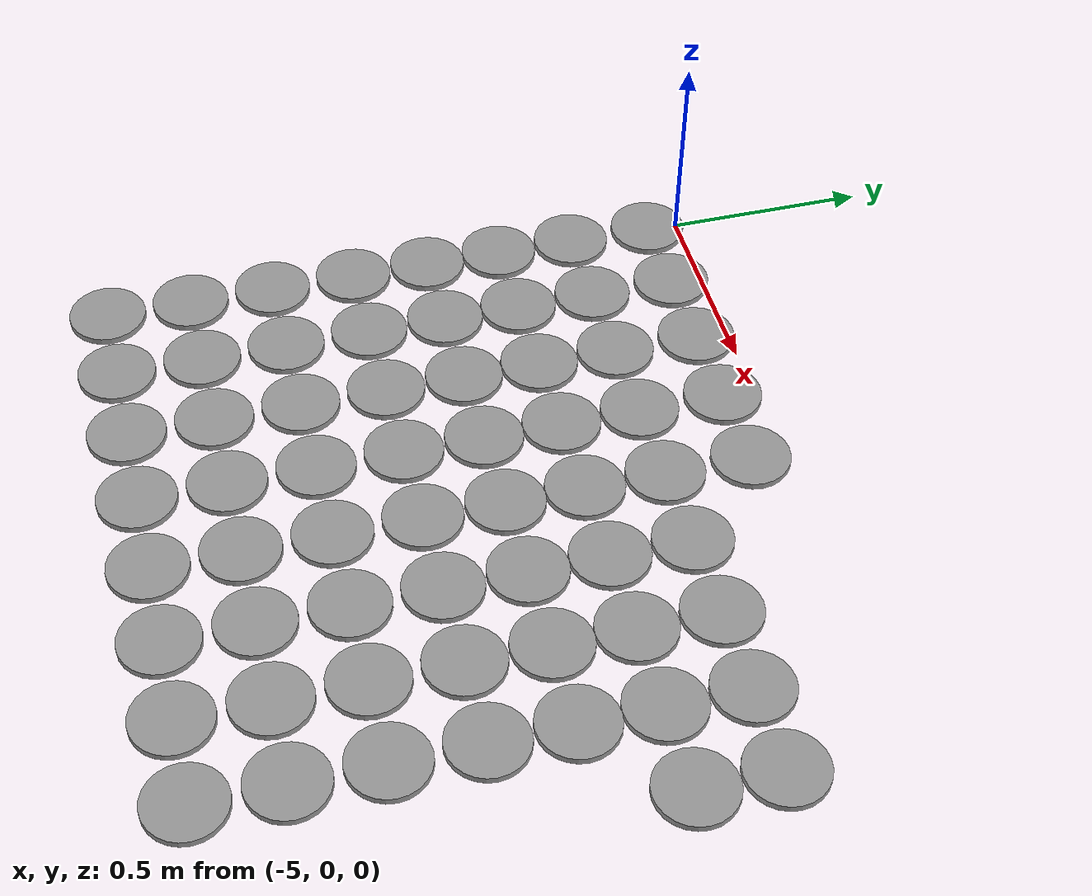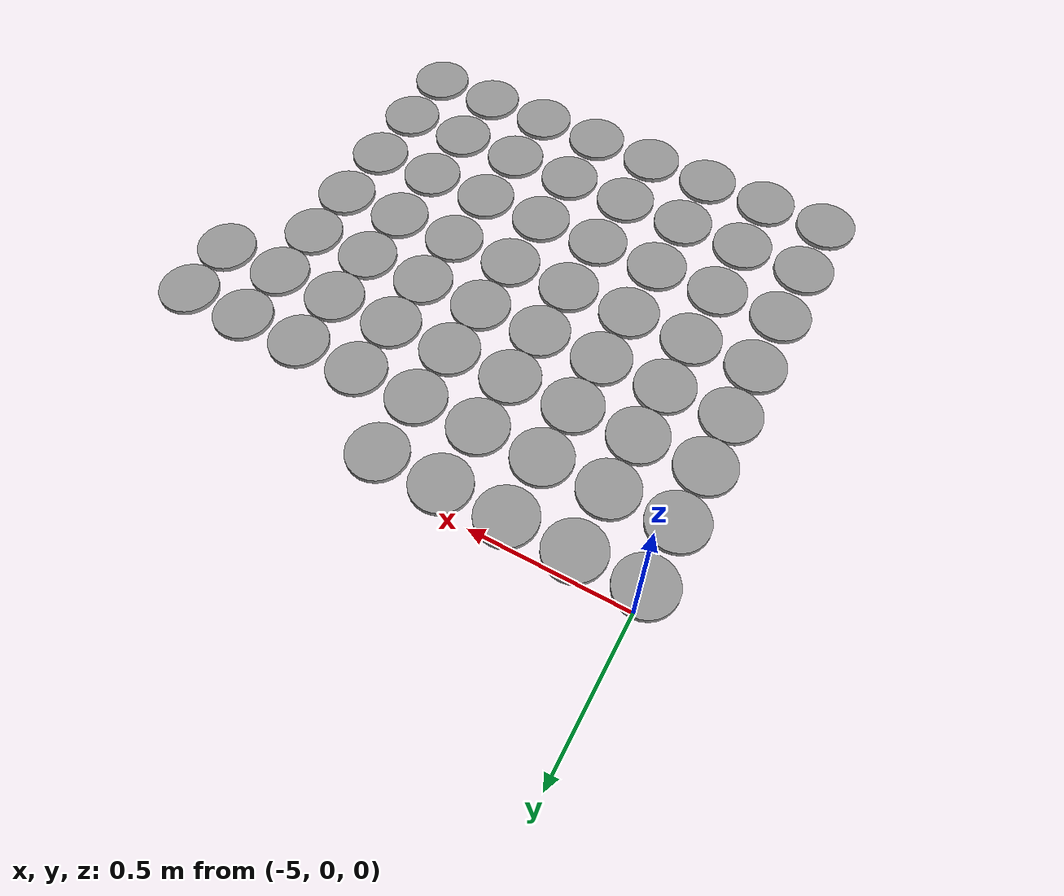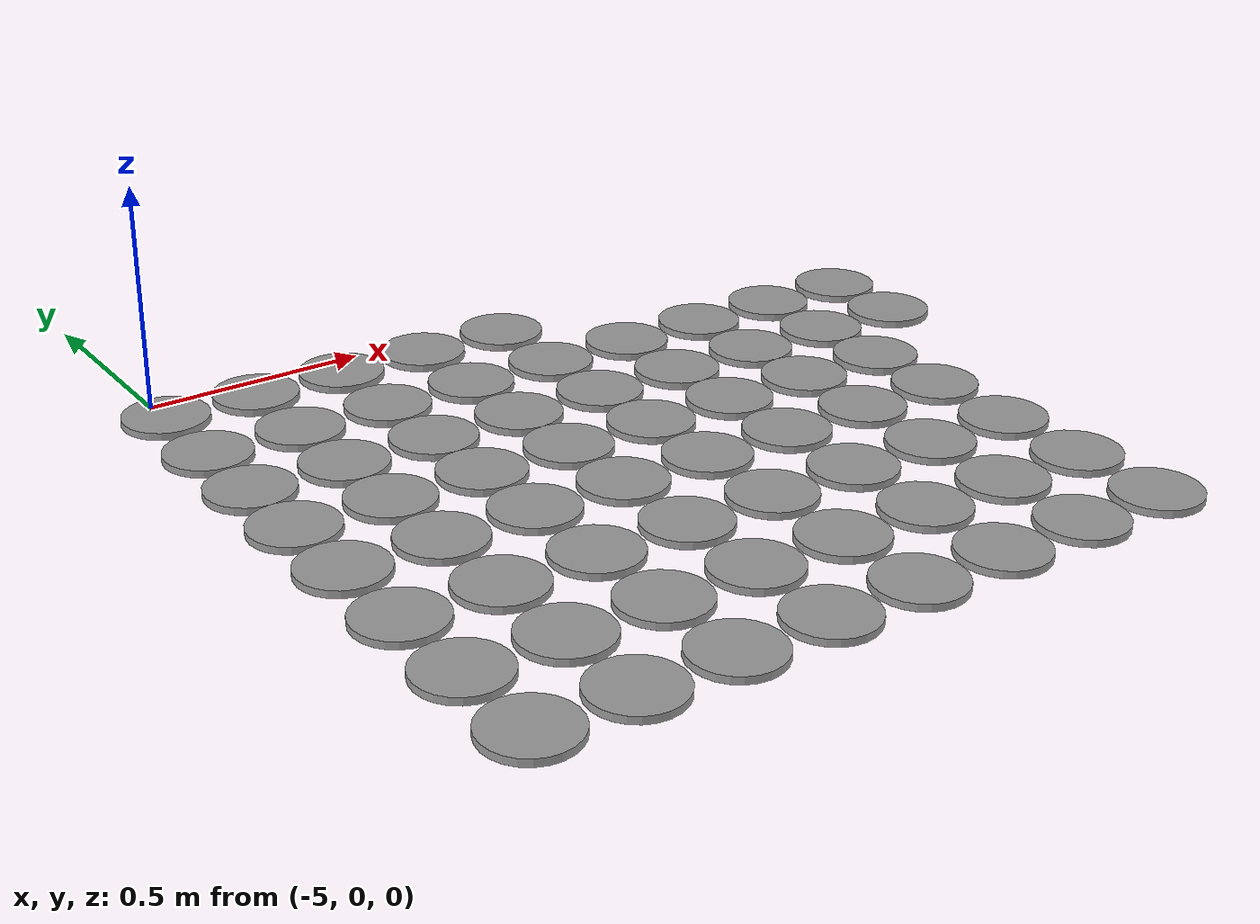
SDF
<sdf version="1.6">
 <world name="default">
  <model name="unit_cylinder_clone_250">
   <pose>-5 -0.484923 0.008111 0 -0 0</pose>
   <link name="link">
    <inertial>
     <mass>1</mass>
     <inertia><ixx>0.145833</ixx><ixy>0</ixy><ixz>0</ixz><iyy>0.145833</iyy><iyz>0</iyz><izz>0.125</izz></inertia>
    </inertial>
    <collision name="collision">
     <geometry><cylinder><radius>0.0950718</radius><length>0.0162339</length></cylinder></geometry>
     <max_contacts>5</max_contacts>
    </collision>
    <visual name="visual">
     <geometry><cylinder><radius>0.0950718</radius><length>0.0162339</length></cylinder></geometry>
     <material>
      <script><name>Gazebo/Grey</name><uri>file://media/materials/scripts/gazebo.material</uri></script>
     </material>
    </visual>
   </link>
  </model>
  <model name="unit_cylinder_clone_251">
   <pose>-5 -0.29 0.008111 0 -0 0</pose>
   <link name="link">
    <inertial>
     <mass>1</mass>
     <inertia><ixx>0.145833</ixx><ixy>0</ixy><ixz>0</ixz><iyy>0.145833</iyy><iyz>0</iyz><izz>0.125</izz></inertia>
    </inertial>
    <collision name="collision">
     <geometry><cylinder><radius>0.0950718</radius><length>0.0162339</length></cylinder></geometry>
     <max_contacts>5</max_contacts>
    </collision>
    <visual name="visual">
     <geometry><cylinder><radius>0.0950718</radius><length>0.0162339</length></cylinder></geometry>
     <material>
      <script><name>Gazebo/Grey</name><uri>file://media/materials/scripts/gazebo.material</uri></script>
     </material>
    </visual>
   </link>
  </model>
  <model name="unit_cylinder_clone_252">
   <pose>-5 -0.08 0.008111 0 -0 0</pose>
   <link name="link">
    <inertial>
     <mass>1</mass>
     <inertia><ixx>0.145833</ixx><ixy>0</ixy><ixz>0</ixz><iyy>0.145833</iyy><iyz>0</iyz><izz>0.125</izz></inertia>
    </inertial>
    <collision name="collision">
     <geometry><cylinder><radius>0.0950718</radius><length>0.0162339</length></cylinder></geometry>
     <max_contacts>5</max_contacts>
    </collision>
    <visual name="visual">
     <geometry><cylinder><radius>0.0950718</radius><length>0.0162339</length></cylinder></geometry>
     <material>
      <script><name>Gazebo/Grey</name><uri>file://media/materials/scripts/gazebo.material</uri></script>
     </material>
    </visual>
   </link>
  </model>
  <model name="unit_cylinder_clone_255">
   <pose>-4.79 -0.484923 0.008111 0 -0 0</pose>
   <link name="link">
    <inertial>
     <mass>1</mass>
     <inertia><ixx>0.145833</ixx><ixy>0</ixy><ixz>0</ixz><iyy>0.145833</iyy><iyz>0</iyz><izz>0.125</izz></inertia>
    </inertial>
    <collision name="collision">
     <geometry><cylinder><radius>0.0950718</radius><length>0.0162339</length></cylinder></geometry>
     <max_contacts>5</max_contacts>
    </collision>
    <visual name="visual">
     <geometry><cylinder><radius>0.0950718</radius><length>0.0162339</length></cylinder></geometry>
     <material>
      <script><name>Gazebo/Grey</name><uri>file://media/materials/scripts/gazebo.material</uri></script>
     </material>
    </visual>
   </link>
  </model>
  <model name="unit_cylinder_clone_256">
   <pose>-4.79 -0.29 0.008111 0 -0 0</pose>
   <link name="link">
    <inertial>
     <mass>1</mass>
     <inertia><ixx>0.145833</ixx><ixy>0</ixy><ixz>0</ixz><iyy>0.145833</iyy><iyz>0</iyz><izz>0.125</izz></inertia>
    </inertial>
    <collision name="collision">
     <geometry><cylinder><radius>0.0950718</radius><length>0.0162339</length></cylinder></geometry>
     <max_contacts>5</max_contacts>
    </collision>
    <visual name="visual">
     <geometry><cylinder><radius>0.0950718</radius><length>0.0162339</length></cylinder></geometry>
     <material>
      <script><name>Gazebo/Grey</name><uri>file://media/materials/scripts/gazebo.material</uri></script>
     </material>
    </visual>
   </link>
  </model>
  <model name="unit_cylinder_clone_257">
   <pose>-4.79 -0.08 0.008111 0 -0 0</pose>
   <link name="link">
    <inertial>
     <mass>1</mass>
     <inertia><ixx>0.145833</ixx><ixy>0</ixy><ixz>0</ixz><iyy>0.145833</iyy><iyz>0</iyz><izz>0.125</izz></inertia>
    </inertial>
    <collision name="collision">
     <geometry><cylinder><radius>0.0950718</radius><length>0.0162339</length></cylinder></geometry>
     <max_contacts>5</max_contacts>
    </collision>
    <visual name="visual">
     <geometry><cylinder><radius>0.0950718</radius><length>0.0162339</length></cylinder></geometry>
     <material>
      <script><name>Gazebo/Grey</name><uri>file://media/materials/scripts/gazebo.material</uri></script>
     </material>
    </visual>
   </link>
  </model>
  <model name="unit_cylinder_clone_260">
   <pose>-4.58 -0.484923 0.008111 0 -0 0</pose>
   <link name="link">
    <inertial>
     <mass>1</mass>
     <inertia><ixx>0.145833</ixx><ixy>0</ixy><ixz>0</ixz><iyy>0.145833</iyy><iyz>0</iyz><izz>0.125</izz></inertia>
    </inertial>
    <collision name="collision">
     <geometry><cylinder><radius>0.0950718</radius><length>0.0162339</length></cylinder></geometry>
     <max_contacts>5</max_contacts>
    </collision>
    <visual name="visual">
     <geometry><cylinder><radius>0.0950718</radius><length>0.0162339</length></cylinder></geometry>
     <material>
      <script><name>Gazebo/Grey</name><uri>file://media/materials/scripts/gazebo.material</uri></script>
     </material>
    </visual>
   </link>
  </model>
  <model name="unit_cylinder_clone_261">
   <pose>-4.58 -0.29 0.008111 0 -0 0</pose>
   <link name="link">
    <inertial>
     <mass>1</mass>
     <inertia><ixx>0.145833</ixx><ixy>0</ixy><ixz>0</ixz><iyy>0.145833</iyy><iyz>0</iyz><izz>0.125</izz></inertia>
    </inertial>
    <collision name="collision">
     <geometry><cylinder><radius>0.0950718</radius><length>0.0162339</length></cylinder></geometry>
     <max_contacts>5</max_contacts>
    </collision>
    <visual name="visual">
     <geometry><cylinder><radius>0.0950718</radius><length>0.0162339</length></cylinder></geometry>
     <material>
      <script><name>Gazebo/Grey</name><uri>file://media/materials/scripts/gazebo.material</uri></script>
     </material>
    </visual>
   </link>
  </model>
  <model name="unit_cylinder_clone_262">
   <pose>-4.58 -0.08 0.008111 0 -0 0</pose>
   <link name="link">
    <inertial>
     <mass>1</mass>
     <inertia><ixx>0.145833</ixx><ixy>0</ixy><ixz>0</ixz><iyy>0.145833</iyy><iyz>0</iyz><izz>0.125</izz></inertia>
    </inertial>
    <collision name="collision">
     <geometry><cylinder><radius>0.0950718</radius><length>0.0162339</length></cylinder></geometry>
     <max_contacts>5</max_contacts>
    </collision>
    <visual name="visual">
     <geometry><cylinder><radius>0.0950718</radius><length>0.0162339</length></cylinder></geometry>
     <material>
      <script><name>Gazebo/Grey</name><uri>file://media/materials/scripts/gazebo.material</uri></script>
     </material>
    </visual>
   </link>
  </model>
  <model name="unit_cylinder_clone_265">
   <pose>-4.37 -0.484923 0.008111 0 -0 0</pose>
   <link name="link">
    <inertial>
     <mass>1</mass>
     <inertia><ixx>0.145833</ixx><ixy>0</ixy><ixz>0</ixz><iyy>0.145833</iyy><iyz>0</iyz><izz>0.125</izz></inertia>
    </inertial>
    <collision name="collision">
     <geometry><cylinder><radius>0.0950718</radius><length>0.0162339</length></cylinder></geometry>
     <max_contacts>5</max_contacts>
    </collision>
    <visual name="visual">
     <geometry><cylinder><radius>0.0950718</radius><length>0.0162339</length></cylinder></geometry>
     <material>
      <script><name>Gazebo/Grey</name><uri>file://media/materials/scripts/gazebo.material</uri></script>
     </material>
    </visual>
   </link>
  </model>
  <model name="unit_cylinder_clone_266">
   <pose>-4.37 -0.29 0.008111 0 -0 0</pose>
   <link name="link">
    <inertial>
     <mass>1</mass>
     <inertia><ixx>0.145833</ixx><ixy>0</ixy><ixz>0</ixz><iyy>0.145833</iyy><iyz>0</iyz><izz>0.125</izz></inertia>
    </inertial>
    <collision name="collision">
     <geometry><cylinder><radius>0.0950718</radius><length>0.0162339</length></cylinder></geometry>
     <max_contacts>5</max_contacts>
    </collision>
    <visual name="visual">
     <geometry><cylinder><radius>0.0950718</radius><length>0.0162339</length></cylinder></geometry>
     <material>
      <script><name>Gazebo/Grey</name><uri>file://media/materials/scripts/gazebo.material</uri></script>
     </material>
    </visual>
   </link>
  </model>
  <model name="unit_cylinder_clone_267">
   <pose>-4.37 -0.08 0.008111 0 -0 0</pose>
   <link name="link">
    <inertial>
     <mass>1</mass>
     <inertia><ixx>0.145833</ixx><ixy>0</ixy><ixz>0</ixz><iyy>0.145833</iyy><iyz>0</iyz><izz>0.125</izz></inertia>
    </inertial>
    <collision name="collision">
     <geometry><cylinder><radius>0.0950718</radius><length>0.0162339</length></cylinder></geometry>
     <max_contacts>5</max_contacts>
    </collision>
    <visual name="visual">
     <geometry><cylinder><radius>0.0950718</radius><length>0.0162339</length></cylinder></geometry>
     <material>
      <script><name>Gazebo/Grey</name><uri>file://media/materials/scripts/gazebo.material</uri></script>
     </material>
    </visual>
   </link>
  </model>
  <model name="unit_cylinder_clone_270">
   <pose>-4.16 -0.484923 0.008111 0 -0 0</pose>
   <link name="link">
    <inertial>
     <mass>1</mass>
     <inertia><ixx>0.145833</ixx><ixy>0</ixy><ixz>0</ixz><iyy>0.145833</iyy><iyz>0</iyz><izz>0.125</izz></inertia>
    </inertial>
    <collision name="collision">
     <geometry><cylinder><radius>0.0950718</radius><length>0.0162339</length></cylinder></geometry>
     <max_contacts>5</max_contacts>
    </collision>
    <visual name="visual">
     <geometry><cylinder><radius>0.0950718</radius><length>0.0162339</length></cylinder></geometry>
     <material>
      <script><name>Gazebo/Grey</name><uri>file://media/materials/scripts/gazebo.material</uri></script>
     </material>
    </visual>
   </link>
  </model>
  <model name="unit_cylinder_clone_271">
   <pose>-4.16 -0.29 0.008111 0 -0 0</pose>
   <link name="link">
    <inertial>
     <mass>1</mass>
     <inertia><ixx>0.145833</ixx><ixy>0</ixy><ixz>0</ixz><iyy>0.145833</iyy><iyz>0</iyz><izz>0.125</izz></inertia>
    </inertial>
    <collision name="collision">
     <geometry><cylinder><radius>0.0950718</radius><length>0.0162339</length></cylinder></geometry>
     <max_contacts>5</max_contacts>
    </collision>
    <visual name="visual">
     <geometry><cylinder><radius>0.0950718</radius><length>0.0162339</length></cylinder></geometry>
     <material>
      <script><name>Gazebo/Grey</name><uri>file://media/materials/scripts/gazebo.material</uri></script>
     </material>
    </visual>
   </link>
  </model>
  <model name="unit_cylinder_clone_272">
   <pose>-4.16 -0.08 0.008111 0 -0 0</pose>
   <link name="link">
    <inertial>
     <mass>1</mass>
     <inertia><ixx>0.145833</ixx><ixy>0</ixy><ixz>0</ixz><iyy>0.145833</iyy><iyz>0</iyz><izz>0.125</izz></inertia>
    </inertial>
    <collision name="collision">
     <geometry><cylinder><radius>0.0950718</radius><length>0.0162339</length></cylinder></geometry>
     <max_contacts>5</max_contacts>
    </collision>
    <visual name="visual">
     <geometry><cylinder><radius>0.0950718</radius><length>0.0162339</length></cylinder></geometry>
     <material>
      <script><name>Gazebo/Grey</name><uri>file://media/materials/scripts/gazebo.material</uri></script>
     </material>
    </visual>
   </link>
  </model>
  <model name="unit_cylinder_clone_275">
   <pose>-3.95 -0.484923 0.008111 0 -0 0</pose>
   <link name="link">
    <inertial>
     <mass>1</mass>
     <inertia><ixx>0.145833</ixx><ixy>0</ixy><ixz>0</ixz><iyy>0.145833</iyy><iyz>0</iyz><izz>0.125</izz></inertia>
    </inertial>
    <collision name="collision">
     <geometry><cylinder><radius>0.0950718</radius><length>0.0162339</length></cylinder></geometry>
     <max_contacts>5</max_contacts>
    </collision>
    <visual name="visual">
     <geometry><cylinder><radius>0.0950718</radius><length>0.0162339</length></cylinder></geometry>
     <material>
      <script><name>Gazebo/Grey</name><uri>file://media/materials/scripts/gazebo.material</uri></script>
     </material>
    </visual>
   </link>
  </model>
  <model name="unit_cylinder_clone_276">
   <pose>-3.95 -0.29 0.008111 0 -0 0</pose>
   <link name="link">
    <inertial>
     <mass>1</mass>
     <inertia><ixx>0.145833</ixx><ixy>0</ixy><ixz>0</ixz><iyy>0.145833</iyy><iyz>0</iyz><izz>0.125</izz></inertia>
    </inertial>
    <collision name="collision">
     <geometry><cylinder><radius>0.0950718</radius><length>0.0162339</length></cylinder></geometry>
     <max_contacts>5</max_contacts>
    </collision>
    <visual name="visual">
     <geometry><cylinder><radius>0.0950718</radius><length>0.0162339</length></cylinder></geometry>
     <material>
      <script><name>Gazebo/Grey</name><uri>file://media/materials/scripts/gazebo.material</uri></script>
     </material>
    </visual>
   </link>
  </model>
  <model name="unit_cylinder_clone_280">
   <pose>-3.74 -0.484923 0.008111 0 -0 0</pose>
   <link name="link">
    <inertial>
     <mass>1</mass>
     <inertia><ixx>0.145833</ixx><ixy>0</ixy><ixz>0</ixz><iyy>0.145833</iyy><iyz>0</iyz><izz>0.125</izz></inertia>
    </inertial>
    <collision name="collision">
     <geometry><cylinder><radius>0.0950718</radius><length>0.0162339</length></cylinder></geometry>
     <max_contacts>5</max_contacts>
    </collision>
    <visual name="visual">
     <geometry><cylinder><radius>0.0950718</radius><length>0.0162339</length></cylinder></geometry>
     <material>
      <script><name>Gazebo/Grey</name><uri>file://media/materials/scripts/gazebo.material</uri></script>
     </material>
    </visual>
   </link>
  </model>
  <model name="unit_cylinder_clone_281">
   <pose>-3.74 -0.29 0.008111 0 -0 0</pose>
   <link name="link">
    <inertial>
     <mass>1</mass>
     <inertia><ixx>0.145833</ixx><ixy>0</ixy><ixz>0</ixz><iyy>0.145833</iyy><iyz>0</iyz><izz>0.125</izz></inertia>
    </inertial>
    <collision name="collision">
     <geometry><cylinder><radius>0.0950718</radius><length>0.0162339</length></cylinder></geometry>
     <max_contacts>5</max_contacts>
    </collision>
    <visual name="visual">
     <geometry><cylinder><radius>0.0950718</radius><length>0.0162339</length></cylinder></geometry>
     <material>
      <script><name>Gazebo/Grey</name><uri>file://media/materials/scripts/gazebo.material</uri></script>
     </material>
    </visual>
   </link>
  </model>
  <model name="unit_cylinder_clone_285">
   <pose>-3.53 -0.484923 0.008111 0 -0 0</pose>
   <link name="link">
    <inertial>
     <mass>1</mass>
     <inertia><ixx>0.145833</ixx><ixy>0</ixy><ixz>0</ixz><iyy>0.145833</iyy><iyz>0</iyz><izz>0.125</izz></inertia>
    </inertial>
    <collision name="collision">
     <geometry><cylinder><radius>0.0950718</radius><length>0.0162339</length></cylinder></geometry>
     <max_contacts>5</max_contacts>
    </collision>
    <visual name="visual">
     <geometry><cylinder><radius>0.0950718</radius><length>0.0162339</length></cylinder></geometry>
     <material>
      <script><name>Gazebo/Grey</name><uri>file://media/materials/scripts/gazebo.material</uri></script>
     </material>
    </visual>
   </link>
  </model>
  <model name="unit_cylinder_clone_286">
   <pose>-3.53 -0.29 0.008111 0 -0 0</pose>
   <link name="link">
    <inertial>
     <mass>1</mass>
     <inertia><ixx>0.145833</ixx><ixy>0</ixy><ixz>0</ixz><iyy>0.145833</iyy><iyz>0</iyz><izz>0.125</izz></inertia>
    </inertial>
    <collision name="collision">
     <geometry><cylinder><radius>0.0950718</radius><length>0.0162339</length></cylinder></geometry>
     <max_contacts>5</max_contacts>
    </collision>
    <visual name="visual">
     <geometry><cylinder><radius>0.0950718</radius><length>0.0162339</length></cylinder></geometry>
     <material>
      <script><name>Gazebo/Grey</name><uri>file://media/materials/scripts/gazebo.material</uri></script>
     </material>
    </visual>
   </link>
  </model>
  <model name="unit_cylinder_clone_290">
   <pose>-3.32 -0.484923 0.008111 0 -0 0</pose>
   <link name="link">
    <inertial>
     <mass>1</mass>
     <inertia><ixx>0.145833</ixx><ixy>0</ixy><ixz>0</ixz><iyy>0.145833</iyy><iyz>0</iyz><izz>0.125</izz></inertia>
    </inertial>
    <collision name="collision">
     <geometry><cylinder><radius>0.0950718</radius><length>0.0162339</length></cylinder></geometry>
     <max_contacts>5</max_contacts>
    </collision>
    <visual name="visual">
     <geometry><cylinder><radius>0.0950718</radius><length>0.0162339</length></cylinder></geometry>
     <material>
      <script><name>Gazebo/Grey</name><uri>file://media/materials/scripts/gazebo.material</uri></script>
     </material>
    </visual>
   </link>
  </model>
  <model name="unit_cylinder_clone_291">
   <pose>-3.32 -0.29 0.008111 0 -0 0</pose>
   <link name="link">
    <inertial>
     <mass>1</mass>
     <inertia><ixx>0.145833</ixx><ixy>0</ixy><ixz>0</ixz><iyy>0.145833</iyy><iyz>0</iyz><izz>0.125</izz></inertia>
    </inertial>
    <collision name="collision">
     <geometry><cylinder><radius>0.0950718</radius><length>0.0162339</length></cylinder></geometry>
     <max_contacts>5</max_contacts>
    </collision>
    <visual name="visual">
     <geometry><cylinder><radius>0.0950718</radius><length>0.0162339</length></cylinder></geometry>
     <material>
      <script><name>Gazebo/Grey</name><uri>file://media/materials/scripts/gazebo.material</uri></script>
     </material>
    </visual>
   </link>
  </model>
  <model name="unit_cylinder_clone_500">
   <pose>-5 -1.5 0.008111 0 -0 0</pose>
   <link name="link">
    <inertial>
     <mass>1</mass>
     <inertia><ixx>0.145833</ixx><ixy>0</ixy><ixz>0</ixz><iyy>0.145833</iyy><iyz>0</iyz><izz>0.125</izz></inertia>
    </inertial>
    <collision name="collision">
     <geometry><cylinder><radius>0.0950718</radius><length>0.0162339</length></cylinder></geometry>
     <max_contacts>5</max_contacts>
    </collision>
    <visual name="visual">
     <geometry><cylinder><radius>0.0950718</radius><length>0.0162339</length></cylinder></geometry>
     <material>
      <script><name>Gazebo/Grey</name><uri>file://media/materials/scripts/gazebo.material</uri></script>
     </material>
    </visual>
   </link>
  </model>
  <model name="unit_cylinder_clone_501">
   <pose>-5 -1.29 0.008111 0 -0 0</pose>
   <link name="link">
    <inertial>
     <mass>1</mass>
     <inertia><ixx>0.145833</ixx><ixy>0</ixy><ixz>0</ixz><iyy>0.145833</iyy><iyz>0</iyz><izz>0.125</izz></inertia>
    </inertial>
    <collision name="collision">
     <geometry><cylinder><radius>0.0950718</radius><length>0.0162339</length></cylinder></geometry>
     <max_contacts>5</max_contacts>
    </collision>
    <visual name="visual">
     <geometry><cylinder><radius>0.0950718</radius><length>0.0162339</length></cylinder></geometry>
     <material>
      <script><name>Gazebo/Grey</name><uri>file://media/materials/scripts/gazebo.material</uri></script>
     </material>
    </visual>
   </link>
  </model>
  <model name="unit_cylinder_clone_502">
   <pose>-5 -1.08 0.008111 0 -0 0</pose>
   <link name="link">
    <inertial>
     <mass>1</mass>
     <inertia><ixx>0.145833</ixx><ixy>0</ixy><ixz>0</ixz><iyy>0.145833</iyy><iyz>0</iyz><izz>0.125</izz></inertia>
    </inertial>
    <collision name="collision">
     <geometry><cylinder><radius>0.0950718</radius><length>0.0162339</length></cylinder></geometry>
     <max_contacts>5</max_contacts>
    </collision>
    <visual name="visual">
     <geometry><cylinder><radius>0.0950718</radius><length>0.0162339</length></cylinder></geometry>
     <material>
      <script><name>Gazebo/Grey</name><uri>file://media/materials/scripts/gazebo.material</uri></script>
     </material>
    </visual>
   </link>
  </model>
  <model name="unit_cylinder_clone_503">
   <pose>-5 -0.87 0.008111 0 -0 0</pose>
   <link name="link">
    <inertial>
     <mass>1</mass>
     <inertia><ixx>0.145833</ixx><ixy>0</ixy><ixz>0</ixz><iyy>0.145833</iyy><iyz>0</iyz><izz>0.125</izz></inertia>
    </inertial>
    <collision name="collision">
     <geometry><cylinder><radius>0.0950718</radius><length>0.0162339</length></cylinder></geometry>
     <max_contacts>5</max_contacts>
    </collision>
    <visual name="visual">
     <geometry><cylinder><radius>0.0950718</radius><length>0.0162339</length></cylinder></geometry>
     <material>
      <script><name>Gazebo/Grey</name><uri>file://media/materials/scripts/gazebo.material</uri></script>
     </material>
    </visual>
   </link>
  </model>
  <model name="unit_cylinder_clone_504">
   <pose>-5 -0.675077 0.008111 0 -0 0</pose>
   <link name="link">
    <inertial>
     <mass>1</mass>
     <inertia><ixx>0.145833</ixx><ixy>0</ixy><ixz>0</ixz><iyy>0.145833</iyy><iyz>0</iyz><izz>0.125</izz></inertia>
    </inertial>
    <collision name="collision">
     <geometry><cylinder><radius>0.0950718</radius><length>0.0162339</length></cylinder></geometry>
     <max_contacts>5</max_contacts>
    </collision>
    <visual name="visual">
     <geometry><cylinder><radius>0.0950718</radius><length>0.0162339</length></cylinder></geometry>
     <material>
      <script><name>Gazebo/Grey</name><uri>file://media/materials/scripts/gazebo.material</uri></script>
     </material>
    </visual>
   </link>
  </model>
  <model name="unit_cylinder_clone_505">
   <pose>-4.79 -1.5 0.008111 0 -0 0</pose>
   <link name="link">
    <inertial>
     <mass>1</mass>
     <inertia><ixx>0.145833</ixx><ixy>0</ixy><ixz>0</ixz><iyy>0.145833</iyy><iyz>0</iyz><izz>0.125</izz></inertia>
    </inertial>
    <collision name="collision">
     <geometry><cylinder><radius>0.0950718</radius><length>0.0162339</length></cylinder></geometry>
     <max_contacts>5</max_contacts>
    </collision>
    <visual name="visual">
     <geometry><cylinder><radius>0.0950718</radius><length>0.0162339</length></cylinder></geometry>
     <material>
      <script><name>Gazebo/Grey</name><uri>file://media/materials/scripts/gazebo.material</uri></script>
     </material>
    </visual>
   </link>
  </model>
  <model name="unit_cylinder_clone_506">
   <pose>-4.79 -1.29 0.008111 0 -0 0</pose>
   <link name="link">
    <inertial>
     <mass>1</mass>
     <inertia><ixx>0.145833</ixx><ixy>0</ixy><ixz>0</ixz><iyy>0.145833</iyy><iyz>0</iyz><izz>0.125</izz></inertia>
    </inertial>
    <collision name="collision">
     <geometry><cylinder><radius>0.0950718</radius><length>0.0162339</length></cylinder></geometry>
     <max_contacts>5</max_contacts>
    </collision>
    <visual name="visual">
     <geometry><cylinder><radius>0.0950718</radius><length>0.0162339</length></cylinder></geometry>
     <material>
      <script><name>Gazebo/Grey</name><uri>file://media/materials/scripts/gazebo.material</uri></script>
     </material>
    </visual>
   </link>
  </model>
  <model name="unit_cylinder_clone_507">
   <pose>-4.79 -1.08 0.008111 0 -0 0</pose>
   <link name="link">
    <inertial>
     <mass>1</mass>
     <inertia><ixx>0.145833</ixx><ixy>0</ixy><ixz>0</ixz><iyy>0.145833</iyy><iyz>0</iyz><izz>0.125</izz></inertia>
    </inertial>
    <collision name="collision">
     <geometry><cylinder><radius>0.0950718</radius><length>0.0162339</length></cylinder></geometry>
     <max_contacts>5</max_contacts>
    </collision>
    <visual name="visual">
     <geometry><cylinder><radius>0.0950718</radius><length>0.0162339</length></cylinder></geometry>
     <material>
      <script><name>Gazebo/Grey</name><uri>file://media/materials/scripts/gazebo.material</uri></script>
     </material>
    </visual>
   </link>
  </model>
  <model name="unit_cylinder_clone_508">
   <pose>-4.79 -0.87 0.008111 0 -0 0</pose>
   <link name="link">
    <inertial>
     <mass>1</mass>
     <inertia><ixx>0.145833</ixx><ixy>0</ixy><ixz>0</ixz><iyy>0.145833</iyy><iyz>0</iyz><izz>0.125</izz></inertia>
    </inertial>
    <collision name="collision">
     <geometry><cylinder><radius>0.0950718</radius><length>0.0162339</length></cylinder></geometry>
     <max_contacts>5</max_contacts>
    </collision>
    <visual name="visual">
     <geometry><cylinder><radius>0.0950718</radius><length>0.0162339</length></cylinder></geometry>
     <material>
      <script><name>Gazebo/Grey</name><uri>file://media/materials/scripts/gazebo.material</uri></script>
     </material>
    </visual>
   </link>
  </model>
  <model name="unit_cylinder_clone_509">
   <pose>-4.79 -0.675077 0.008111 0 -0 0</pose>
   <link name="link">
    <inertial>
     <mass>1</mass>
     <inertia><ixx>0.145833</ixx><ixy>0</ixy><ixz>0</ixz><iyy>0.145833</iyy><iyz>0</iyz><izz>0.125</izz></inertia>
    </inertial>
    <collision name="collision">
     <geometry><cylinder><radius>0.0950718</radius><length>0.0162339</length></cylinder></geometry>
     <max_contacts>5</max_contacts>
    </collision>
    <visual name="visual">
     <geometry><cylinder><radius>0.0950718</radius><length>0.0162339</length></cylinder></geometry>
     <material>
      <script><name>Gazebo/Grey</name><uri>file://media/materials/scripts/gazebo.material</uri></script>
     </material>
    </visual>
   </link>
  </model>
  <model name="unit_cylinder_clone_510">
   <pose>-4.58 -1.5 0.008111 0 -0 0</pose>
   <link name="link">
    <inertial>
     <mass>1</mass>
     <inertia><ixx>0.145833</ixx><ixy>0</ixy><ixz>0</ixz><iyy>0.145833</iyy><iyz>0</iyz><izz>0.125</izz></inertia>
    </inertial>
    <collision name="collision">
     <geometry><cylinder><radius>0.0950718</radius><length>0.0162339</length></cylinder></geometry>
     <max_contacts>5</max_contacts>
    </collision>
    <visual name="visual">
     <geometry><cylinder><radius>0.0950718</radius><length>0.0162339</length></cylinder></geometry>
     <material>
      <script><name>Gazebo/Grey</name><uri>file://media/materials/scripts/gazebo.material</uri></script>
     </material>
    </visual>
   </link>
  </model>
  <model name="unit_cylinder_clone_511">
   <pose>-4.58 -1.29 0.008111 0 -0 0</pose>
   <link name="link">
    <inertial>
     <mass>1</mass>
     <inertia><ixx>0.145833</ixx><ixy>0</ixy><ixz>0</ixz><iyy>0.145833</iyy><iyz>0</iyz><izz>0.125</izz></inertia>
    </inertial>
    <collision name="collision">
     <geometry><cylinder><radius>0.0950718</radius><length>0.0162339</length></cylinder></geometry>
     <max_contacts>5</max_contacts>
    </collision>
    <visual name="visual">
     <geometry><cylinder><radius>0.0950718</radius><length>0.0162339</length></cylinder></geometry>
     <material>
      <script><name>Gazebo/Grey</name><uri>file://media/materials/scripts/gazebo.material</uri></script>
     </material>
    </visual>
   </link>
  </model>
  <model name="unit_cylinder_clone_512">
   <pose>-4.58 -1.08 0.008111 0 -0 0</pose>
   <link name="link">
    <inertial>
     <mass>1</mass>
     <inertia><ixx>0.145833</ixx><ixy>0</ixy><ixz>0</ixz><iyy>0.145833</iyy><iyz>0</iyz><izz>0.125</izz></inertia>
    </inertial>
    <collision name="collision">
     <geometry><cylinder><radius>0.0950718</radius><length>0.0162339</length></cylinder></geometry>
     <max_contacts>5</max_contacts>
    </collision>
    <visual name="visual">
     <geometry><cylinder><radius>0.0950718</radius><length>0.0162339</length></cylinder></geometry>
     <material>
      <script><name>Gazebo/Grey</name><uri>file://media/materials/scripts/gazebo.material</uri></script>
     </material>
    </visual>
   </link>
  </model>
  <model name="unit_cylinder_clone_513">
   <pose>-4.58 -0.87 0.008111 0 -0 0</pose>
   <link name="link">
    <inertial>
     <mass>1</mass>
     <inertia><ixx>0.145833</ixx><ixy>0</ixy><ixz>0</ixz><iyy>0.145833</iyy><iyz>0</iyz><izz>0.125</izz></inertia>
    </inertial>
    <collision name="collision">
     <geometry><cylinder><radius>0.0950718</radius><length>0.0162339</length></cylinder></geometry>
     <max_contacts>5</max_contacts>
    </collision>
    <visual name="visual">
     <geometry><cylinder><radius>0.0950718</radius><length>0.0162339</length></cylinder></geometry>
     <material>
      <script><name>Gazebo/Grey</name><uri>file://media/materials/scripts/gazebo.material</uri></script>
     </material>
    </visual>
   </link>
  </model>
  <model name="unit_cylinder_clone_514">
   <pose>-4.58 -0.675077 0.008111 0 -0 0</pose>
   <link name="link">
    <inertial>
     <mass>1</mass>
     <inertia><ixx>0.145833</ixx><ixy>0</ixy><ixz>0</ixz><iyy>0.145833</iyy><iyz>0</iyz><izz>0.125</izz></inertia>
    </inertial>
    <collision name="collision">
     <geometry><cylinder><radius>0.0950718</radius><length>0.0162339</length></cylinder></geometry>
     <max_contacts>5</max_contacts>
    </collision>
    <visual name="visual">
     <geometry><cylinder><radius>0.0950718</radius><length>0.0162339</length></cylinder></geometry>
     <material>
      <script><name>Gazebo/Grey</name><uri>file://media/materials/scripts/gazebo.material</uri></script>
     </material>
    </visual>
   </link>
  </model>
  <model name="unit_cylinder_clone_515">
   <pose>-4.37 -1.5 0.008111 0 -0 0</pose>
   <link name="link">
    <inertial>
     <mass>1</mass>
     <inertia><ixx>0.145833</ixx><ixy>0</ixy><ixz>0</ixz><iyy>0.145833</iyy><iyz>0</iyz><izz>0.125</izz></inertia>
    </inertial>
    <collision name="collision">
     <geometry><cylinder><radius>0.0950718</radius><length>0.0162339</length></cylinder></geometry>
     <max_contacts>5</max_contacts>
    </collision>
    <visual name="visual">
     <geometry><cylinder><radius>0.0950718</radius><length>0.0162339</length></cylinder></geometry>
     <material>
      <script><name>Gazebo/Grey</name><uri>file://media/materials/scripts/gazebo.material</uri></script>
     </material>
    </visual>
   </link>
  </model>
  <model name="unit_cylinder_clone_516">
   <pose>-4.37 -1.29 0.008111 0 -0 0</pose>
   <link name="link">
    <inertial>
     <mass>1</mass>
     <inertia><ixx>0.145833</ixx><ixy>0</ixy><ixz>0</ixz><iyy>0.145833</iyy><iyz>0</iyz><izz>0.125</izz></inertia>
    </inertial>
    <collision name="collision">
     <geometry><cylinder><radius>0.0950718</radius><length>0.0162339</length></cylinder></geometry>
     <max_contacts>5</max_contacts>
    </collision>
    <visual name="visual">
     <geometry><cylinder><radius>0.0950718</radius><length>0.0162339</length></cylinder></geometry>
     <material>
      <script><name>Gazebo/Grey</name><uri>file://media/materials/scripts/gazebo.material</uri></script>
     </material>
    </visual>
   </link>
  </model>
  <model name="unit_cylinder_clone_517">
   <pose>-4.37 -1.08 0.008111 0 -0 0</pose>
   <link name="link">
    <inertial>
     <mass>1</mass>
     <inertia><ixx>0.145833</ixx><ixy>0</ixy><ixz>0</ixz><iyy>0.145833</iyy><iyz>0</iyz><izz>0.125</izz></inertia>
    </inertial>
    <collision name="collision">
     <geometry><cylinder><radius>0.0950718</radius><length>0.0162339</length></cylinder></geometry>
     <max_contacts>5</max_contacts>
    </collision>
    <visual name="visual">
     <geometry><cylinder><radius>0.0950718</radius><length>0.0162339</length></cylinder></geometry>
     <material>
      <script><name>Gazebo/Grey</name><uri>file://media/materials/scripts/gazebo.material</uri></script>
     </material>
    </visual>
   </link>
  </model>
  <model name="unit_cylinder_clone_518">
   <pose>-4.37 -0.87 0.008111 0 -0 0</pose>
   <link name="link">
    <inertial>
     <mass>1</mass>
     <inertia><ixx>0.145833</ixx><ixy>0</ixy><ixz>0</ixz><iyy>0.145833</iyy><iyz>0</iyz><izz>0.125</izz></inertia>
    </inertial>
    <collision name="collision">
     <geometry><cylinder><radius>0.0950718</radius><length>0.0162339</length></cylinder></geometry>
     <max_contacts>5</max_contacts>
    </collision>
    <visual name="visual">
     <geometry><cylinder><radius>0.0950718</radius><length>0.0162339</length></cylinder></geometry>
     <material>
      <script><name>Gazebo/Grey</name><uri>file://media/materials/scripts/gazebo.material</uri></script>
     </material>
    </visual>
   </link>
  </model>
  <model name="unit_cylinder_clone_519">
   <pose>-4.37 -0.675077 0.008111 0 -0 0</pose>
   <link name="link">
    <inertial>
     <mass>1</mass>
     <inertia><ixx>0.145833</ixx><ixy>0</ixy><ixz>0</ixz><iyy>0.145833</iyy><iyz>0</iyz><izz>0.125</izz></inertia>
    </inertial>
    <collision name="collision">
     <geometry><cylinder><radius>0.0950718</radius><length>0.0162339</length></cylinder></geometry>
     <max_contacts>5</max_contacts>
    </collision>
    <visual name="visual">
     <geometry><cylinder><radius>0.0950718</radius><length>0.0162339</length></cylinder></geometry>
     <material>
      <script><name>Gazebo/Grey</name><uri>file://media/materials/scripts/gazebo.material</uri></script>
     </material>
    </visual>
   </link>
  </model>
  <model name="unit_cylinder_clone_520">
   <pose>-4.16 -1.5 0.008111 0 -0 0</pose>
   <link name="link">
    <inertial>
     <mass>1</mass>
     <inertia><ixx>0.145833</ixx><ixy>0</ixy><ixz>0</ixz><iyy>0.145833</iyy><iyz>0</iyz><izz>0.125</izz></inertia>
    </inertial>
    <collision name="collision">
     <geometry><cylinder><radius>0.0950718</radius><length>0.0162339</length></cylinder></geometry>
     <max_contacts>5</max_contacts>
    </collision>
    <visual name="visual">
     <geometry><cylinder><radius>0.0950718</radius><length>0.0162339</length></cylinder></geometry>
     <material>
      <script><name>Gazebo/Grey</name><uri>file://media/materials/scripts/gazebo.material</uri></script>
     </material>
    </visual>
   </link>
  </model>
  <model name="unit_cylinder_clone_521">
   <pose>-4.16 -1.29 0.008111 0 -0 0</pose>
   <link name="link">
    <inertial>
     <mass>1</mass>
     <inertia><ixx>0.145833</ixx><ixy>0</ixy><ixz>0</ixz><iyy>0.145833</iyy><iyz>0</iyz><izz>0.125</izz></inertia>
    </inertial>
    <collision name="collision">
     <geometry><cylinder><radius>0.0950718</radius><length>0.0162339</length></cylinder></geometry>
     <max_contacts>5</max_contacts>
    </collision>
    <visual name="visual">
     <geometry><cylinder><radius>0.0950718</radius><length>0.0162339</length></cylinder></geometry>
     <material>
      <script><name>Gazebo/Grey</name><uri>file://media/materials/scripts/gazebo.material</uri></script>
     </material>
    </visual>
   </link>
  </model>
  <model name="unit_cylinder_clone_522">
   <pose>-4.16 -1.08 0.008111 0 -0 0</pose>
   <link name="link">
    <inertial>
     <mass>1</mass>
     <inertia><ixx>0.145833</ixx><ixy>0</ixy><ixz>0</ixz><iyy>0.145833</iyy><iyz>0</iyz><izz>0.125</izz></inertia>
    </inertial>
    <collision name="collision">
     <geometry><cylinder><radius>0.0950718</radius><length>0.0162339</length></cylinder></geometry>
     <max_contacts>5</max_contacts>
    </collision>
    <visual name="visual">
     <geometry><cylinder><radius>0.0950718</radius><length>0.0162339</length></cylinder></geometry>
     <material>
      <script><name>Gazebo/Grey</name><uri>file://media/materials/scripts/gazebo.material</uri></script>
     </material>
    </visual>
   </link>
  </model>
  <model name="unit_cylinder_clone_523">
   <pose>-4.16 -0.87 0.008111 0 -0 0</pose>
   <link name="link">
    <inertial>
     <mass>1</mass>
     <inertia><ixx>0.145833</ixx><ixy>0</ixy><ixz>0</ixz><iyy>0.145833</iyy><iyz>0</iyz><izz>0.125</izz></inertia>
    </inertial>
    <collision name="collision">
     <geometry><cylinder><radius>0.0950718</radius><length>0.0162339</length></cylinder></geometry>
     <max_contacts>5</max_contacts>
    </collision>
    <visual name="visual">
     <geometry><cylinder><radius>0.0950718</radius><length>0.0162339</length></cylinder></geometry>
     <material>
      <script><name>Gazebo/Grey</name><uri>file://media/materials/scripts/gazebo.material</uri></script>
     </material>
    </visual>
   </link>
  </model>
  <model name="unit_cylinder_clone_524">
   <pose>-4.16 -0.675077 0.008111 0 -0 0</pose>
   <link name="link">
    <inertial>
     <mass>1</mass>
     <inertia><ixx>0.145833</ixx><ixy>0</ixy><ixz>0</ixz><iyy>0.145833</iyy><iyz>0</iyz><izz>0.125</izz></inertia>
    </inertial>
    <collision name="collision">
     <geometry><cylinder><radius>0.0950718</radius><length>0.0162339</length></cylinder></geometry>
     <max_contacts>5</max_contacts>
    </collision>
    <visual name="visual">
     <geometry><cylinder><radius>0.0950718</radius><length>0.0162339</length></cylinder></geometry>
     <material>
      <script><name>Gazebo/Grey</name><uri>file://media/materials/scripts/gazebo.material</uri></script>
     </material>
    </visual>
   </link>
  </model>
  <model name="unit_cylinder_clone_525">
   <pose>-3.95 -1.5 0.008111 0 -0 0</pose>
   <link name="link">
    <inertial>
     <mass>1</mass>
     <inertia><ixx>0.145833</ixx><ixy>0</ixy><ixz>0</ixz><iyy>0.145833</iyy><iyz>0</iyz><izz>0.125</izz></inertia>
    </inertial>
    <collision name="collision">
     <geometry><cylinder><radius>0.0950718</radius><length>0.0162339</length></cylinder></geometry>
     <max_contacts>5</max_contacts>
    </collision>
    <visual name="visual">
     <geometry><cylinder><radius>0.0950718</radius><length>0.0162339</length></cylinder></geometry>
     <material>
      <script><name>Gazebo/Grey</name><uri>file://media/materials/scripts/gazebo.material</uri></script>
     </material>
    </visual>
   </link>
  </model>
  <model name="unit_cylinder_clone_526">
   <pose>-3.95 -1.29 0.008111 0 -0 0</pose>
   <link name="link">
    <inertial>
     <mass>1</mass>
     <inertia><ixx>0.145833</ixx><ixy>0</ixy><ixz>0</ixz><iyy>0.145833</iyy><iyz>0</iyz><izz>0.125</izz></inertia>
    </inertial>
    <collision name="collision">
     <geometry><cylinder><radius>0.0950718</radius><length>0.0162339</length></cylinder></geometry>
     <max_contacts>5</max_contacts>
    </collision>
    <visual name="visual">
     <geometry><cylinder><radius>0.0950718</radius><length>0.0162339</length></cylinder></geometry>
     <material>
      <script><name>Gazebo/Grey</name><uri>file://media/materials/scripts/gazebo.material</uri></script>
     </material>
    </visual>
   </link>
  </model>
  <model name="unit_cylinder_clone_527">
   <pose>-3.95 -1.08 0.008111 0 -0 0</pose>
   <link name="link">
    <inertial>
     <mass>1</mass>
     <inertia><ixx>0.145833</ixx><ixy>0</ixy><ixz>0</ixz><iyy>0.145833</iyy><iyz>0</iyz><izz>0.125</izz></inertia>
    </inertial>
    <collision name="collision">
     <geometry><cylinder><radius>0.0950718</radius><length>0.0162339</length></cylinder></geometry>
     <max_contacts>5</max_contacts>
    </collision>
    <visual name="visual">
     <geometry><cylinder><radius>0.0950718</radius><length>0.0162339</length></cylinder></geometry>
     <material>
      <script><name>Gazebo/Grey</name><uri>file://media/materials/scripts/gazebo.material</uri></script>
     </material>
    </visual>
   </link>
  </model>
  <model name="unit_cylinder_clone_528">
   <pose>-3.95 -0.87 0.008111 0 -0 0</pose>
   <link name="link">
    <inertial>
     <mass>1</mass>
     <inertia><ixx>0.145833</ixx><ixy>0</ixy><ixz>0</ixz><iyy>0.145833</iyy><iyz>0</iyz><izz>0.125</izz></inertia>
    </inertial>
    <collision name="collision">
     <geometry><cylinder><radius>0.0950718</radius><length>0.0162339</length></cylinder></geometry>
     <max_contacts>5</max_contacts>
    </collision>
    <visual name="visual">
     <geometry><cylinder><radius>0.0950718</radius><length>0.0162339</length></cylinder></geometry>
     <material>
      <script><name>Gazebo/Grey</name><uri>file://media/materials/scripts/gazebo.material</uri></script>
     </material>
    </visual>
   </link>
  </model>
  <model name="unit_cylinder_clone_529">
   <pose>-3.95 -0.675077 0.008111 0 -0 0</pose>
   <link name="link">
    <inertial>
     <mass>1</mass>
     <inertia><ixx>0.145833</ixx><ixy>0</ixy><ixz>0</ixz><iyy>0.145833</iyy><iyz>0</iyz><izz>0.125</izz></inertia>
    </inertial>
    <collision name="collision">
     <geometry><cylinder><radius>0.0950718</radius><length>0.0162339</length></cylinder></geometry>
     <max_contacts>5</max_contacts>
    </collision>
    <visual name="visual">
     <geometry><cylinder><radius>0.0950718</radius><length>0.0162339</length></cylinder></geometry>
     <material>
      <script><name>Gazebo/Grey</name><uri>file://media/materials/scripts/gazebo.material</uri></script>
     </material>
    </visual>
   </link>
  </model>
  <model name="unit_cylinder_clone_530">
   <pose>-3.74 -1.5 0.008111 0 -0 0</pose>
   <link name="link">
    <inertial>
     <mass>1</mass>
     <inertia><ixx>0.145833</ixx><ixy>0</ixy><ixz>0</ixz><iyy>0.145833</iyy><iyz>0</iyz><izz>0.125</izz></inertia>
    </inertial>
    <collision name="collision">
     <geometry><cylinder><radius>0.0950718</radius><length>0.0162339</length></cylinder></geometry>
     <max_contacts>5</max_contacts>
    </collision>
    <visual name="visual">
     <geometry><cylinder><radius>0.0950718</radius><length>0.0162339</length></cylinder></geometry>
     <material>
      <script><name>Gazebo/Grey</name><uri>file://media/materials/scripts/gazebo.material</uri></script>
     </material>
    </visual>
   </link>
  </model>
  <model name="unit_cylinder_clone_531">
   <pose>-3.74 -1.29 0.008111 0 -0 0</pose>
   <link name="link">
    <inertial>
     <mass>1</mass>
     <inertia><ixx>0.145833</ixx><ixy>0</ixy><ixz>0</ixz><iyy>0.145833</iyy><iyz>0</iyz><izz>0.125</izz></inertia>
    </inertial>
    <collision name="collision">
     <geometry><cylinder><radius>0.0950718</radius><length>0.0162339</length></cylinder></geometry>
     <max_contacts>5</max_contacts>
    </collision>
    <visual name="visual">
     <geometry><cylinder><radius>0.0950718</radius><length>0.0162339</length></cylinder></geometry>
     <material>
      <script><name>Gazebo/Grey</name><uri>file://media/materials/scripts/gazebo.material</uri></script>
     </material>
    </visual>
   </link>
  </model>
  <model name="unit_cylinder_clone_532">
   <pose>-3.74 -1.08 0.008111 0 -0 0</pose>
   <link name="link">
    <inertial>
     <mass>1</mass>
     <inertia><ixx>0.145833</ixx><ixy>0</ixy><ixz>0</ixz><iyy>0.145833</iyy><iyz>0</iyz><izz>0.125</izz></inertia>
    </inertial>
    <collision name="collision">
     <geometry><cylinder><radius>0.0950718</radius><length>0.0162339</length></cylinder></geometry>
     <max_contacts>5</max_contacts>
    </collision>
    <visual name="visual">
     <geometry><cylinder><radius>0.0950718</radius><length>0.0162339</length></cylinder></geometry>
     <material>
      <script><name>Gazebo/Grey</name><uri>file://media/materials/scripts/gazebo.material</uri></script>
     </material>
    </visual>
   </link>
  </model>
  <model name="unit_cylinder_clone_533">
   <pose>-3.74 -0.87 0.008111 0 -0 0</pose>
   <link name="link">
    <inertial>
     <mass>1</mass>
     <inertia><ixx>0.145833</ixx><ixy>0</ixy><ixz>0</ixz><iyy>0.145833</iyy><iyz>0</iyz><izz>0.125</izz></inertia>
    </inertial>
    <collision name="collision">
     <geometry><cylinder><radius>0.0950718</radius><length>0.0162339</length></cylinder></geometry>
     <max_contacts>5</max_contacts>
    </collision>
    <visual name="visual">
     <geometry><cylinder><radius>0.0950718</radius><length>0.0162339</length></cylinder></geometry>
     <material>
      <script><name>Gazebo/Grey</name><uri>file://media/materials/scripts/gazebo.material</uri></script>
     </material>
    </visual>
   </link>
  </model>
  <model name="unit_cylinder_clone_534">
   <pose>-3.74 -0.675077 0.008111 0 -0 0</pose>
   <link name="link">
    <inertial>
     <mass>1</mass>
     <inertia><ixx>0.145833</ixx><ixy>0</ixy><ixz>0</ixz><iyy>0.145833</iyy><iyz>0</iyz><izz>0.125</izz></inertia>
    </inertial>
    <collision name="collision">
     <geometry><cylinder><radius>0.0950718</radius><length>0.0162339</length></cylinder></geometry>
     <max_contacts>5</max_contacts>
    </collision>
    <visual name="visual">
     <geometry><cylinder><radius>0.0950718</radius><length>0.0162339</length></cylinder></geometry>
     <material>
      <script><name>Gazebo/Grey</name><uri>file://media/materials/scripts/gazebo.material</uri></script>
     </material>
    </visual>
   </link>
  </model>
  <model name="unit_cylinder_clone_535">
   <pose>-3.53 -1.5 0.008111 0 -0 0</pose>
   <link name="link">
    <inertial>
     <mass>1</mass>
     <inertia><ixx>0.145833</ixx><ixy>0</ixy><ixz>0</ixz><iyy>0.145833</iyy><iyz>0</iyz><izz>0.125</izz></inertia>
    </inertial>
    <collision name="collision">
     <geometry><cylinder><radius>0.0950718</radius><length>0.0162339</length></cylinder></geometry>
     <max_contacts>5</max_contacts>
    </collision>
    <visual name="visual">
     <geometry><cylinder><radius>0.0950718</radius><length>0.0162339</length></cylinder></geometry>
     <material>
      <script><name>Gazebo/Grey</name><uri>file://media/materials/scripts/gazebo.material</uri></script>
     </material>
    </visual>
   </link>
  </model>
  <model name="unit_cylinder_clone_536">
   <pose>-3.53 -1.29 0.008111 0 -0 0</pose>
   <link name="link">
    <inertial>
     <mass>1</mass>
     <inertia><ixx>0.145833</ixx><ixy>0</ixy><ixz>0</ixz><iyy>0.145833</iyy><iyz>0</iyz><izz>0.125</izz></inertia>
    </inertial>
    <collision name="collision">
     <geometry><cylinder><radius>0.0950718</radius><length>0.0162339</length></cylinder></geometry>
     <max_contacts>5</max_contacts>
    </collision>
    <visual name="visual">
     <geometry><cylinder><radius>0.0950718</radius><length>0.0162339</length></cylinder></geometry>
     <material>
      <script><name>Gazebo/Grey</name><uri>file://media/materials/scripts/gazebo.material</uri></script>
     </material>
    </visual>
   </link>
  </model>
  <model name="unit_cylinder_clone_537">
   <pose>-3.53 -1.08 0.008111 0 -0 0</pose>
   <link name="link">
    <inertial>
     <mass>1</mass>
     <inertia><ixx>0.145833</ixx><ixy>0</ixy><ixz>0</ixz><iyy>0.145833</iyy><iyz>0</iyz><izz>0.125</izz></inertia>
    </inertial>
    <collision name="collision">
     <geometry><cylinder><radius>0.0950718</radius><length>0.0162339</length></cylinder></geometry>
     <max_contacts>5</max_contacts>
    </collision>
    <visual name="visual">
     <geometry><cylinder><radius>0.0950718</radius><length>0.0162339</length></cylinder></geometry>
     <material>
      <script><name>Gazebo/Grey</name><uri>file://media/materials/scripts/gazebo.material</uri></script>
     </material>
    </visual>
   </link>
  </model>
  <model name="unit_cylinder_clone_538">
   <pose>-3.53 -0.87 0.008111 0 -0 0</pose>
   <link name="link">
    <inertial>
     <mass>1</mass>
     <inertia><ixx>0.145833</ixx><ixy>0</ixy><ixz>0</ixz><iyy>0.145833</iyy><iyz>0</iyz><izz>0.125</izz></inertia>
    </inertial>
    <collision name="collision">
     <geometry><cylinder><radius>0.0950718</radius><length>0.0162339</length></cylinder></geometry>
     <max_contacts>5</max_contacts>
    </collision>
    <visual name="visual">
     <geometry><cylinder><radius>0.0950718</radius><length>0.0162339</length></cylinder></geometry>
     <material>
      <script><name>Gazebo/Grey</name><uri>file://media/materials/scripts/gazebo.material</uri></script>
     </material>
    </visual>
   </link>
  </model>
  <model name="unit_cylinder_clone_539">
   <pose>-3.53 -0.675077 0.008111 0 -0 0</pose>
   <link name="link">
    <inertial>
     <mass>1</mass>
     <inertia><ixx>0.145833</ixx><ixy>0</ixy><ixz>0</ixz><iyy>0.145833</iyy><iyz>0</iyz><izz>0.125</izz></inertia>
    </inertial>
    <collision name="collision">
     <geometry><cylinder><radius>0.0950718</radius><length>0.0162339</length></cylinder></geometry>
     <max_contacts>5</max_contacts>
    </collision>
    <visual name="visual">
     <geometry><cylinder><radius>0.0950718</radius><length>0.0162339</length></cylinder></geometry>
     <material>
      <script><name>Gazebo/Grey</name><uri>file://media/materials/scripts/gazebo.material</uri></script>
     </material>
    </visual>
   </link>
  </model>
 </world>
</sdf>
